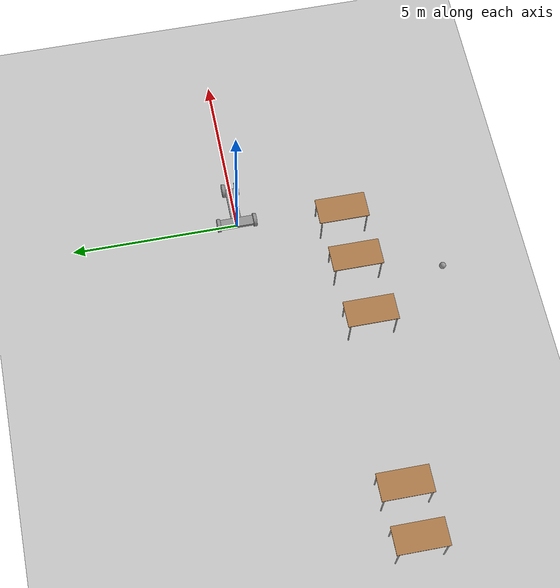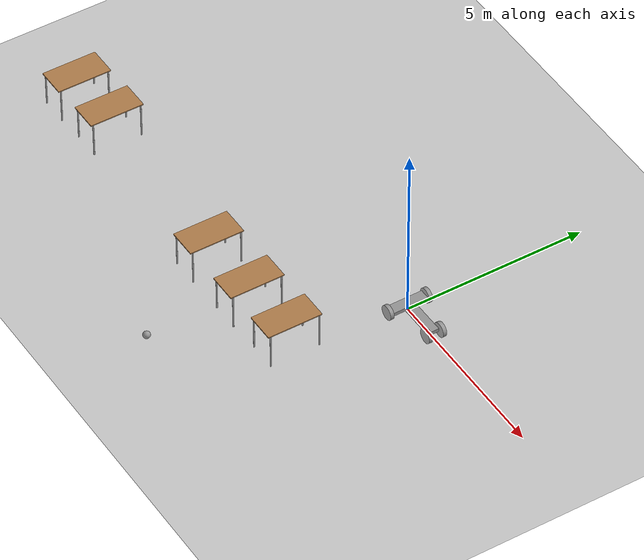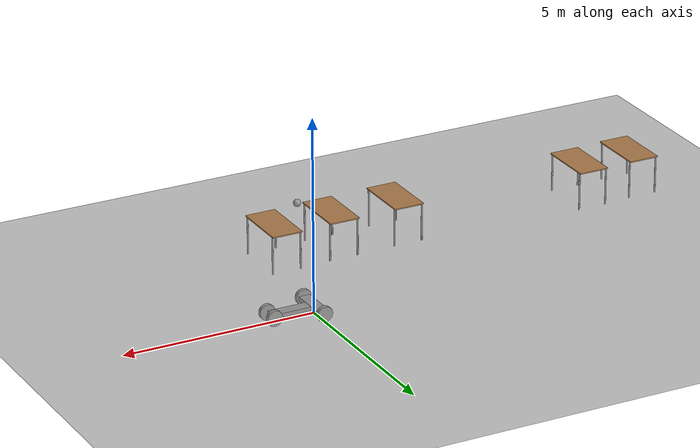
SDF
<sdf version="1.7">
 <world name="default">
  <model name="ground_plane">
   <static>1</static>
   <link name="link">
    <collision name="collision">
     <geometry><plane><normal>0 0 1</normal><size>100 100</size></plane></geometry>
     <surface>
      <contact><collide_bitmask>65535</collide_bitmask></contact>
      <friction><ode><mu>100</mu><mu2>50</mu2></ode></friction>
     </surface>
    </collision>
    <visual name="visual">
     <cast_shadows>0</cast_shadows>
     <geometry><plane><normal>0 0 1</normal><size>100 100</size></plane></geometry>
     <material>
      <script><uri>file://media/materials/scripts/gazebo.material</uri><name>Gazebo/Grey</name></script>
     </material>
    </visual>
   </link>
  </model>
  <model name="robot">
   <link name="link_0">
    <inertial>
     <mass>1</mass>
     <inertia>
      <ixx>0.166667</ixx>
      <ixy>0</ixy>
      <ixz>0</ixz>
      <iyy>0.166667</iyy>
      <iyz>0</iyz>
      <izz>0.166667</izz>
     </inertia>
    </inertial>
    <pose>-0.408333 0 0 0 -0 0</pose>
    <visual name="visual">
     <geometry><box><size>0.3 1 0.1</size></box></geometry>
     <material>
      <lighting>1</lighting>
      <script><uri>file://media/materials/scripts/gazebo.material</uri><name>Gazebo/Grey</name></script>
      <shader type="pixel"><normal_map>__default__</normal_map></shader>
      <ambient>0.3 0.3 0.3 1</ambient>
      <diffuse>0.7 0.7 0.7 1</diffuse>
      <specular>0.01 0.01 0.01 1</specular>
      <emissive>0 0 0 1</emissive>
     </material>
    </visual>
    <collision name="collision">
     <geometry><box><size>0.3 1 0.1</size></box></geometry>
     <surface>
      <friction>
       <ode><mu>1</mu><mu2>1</mu2><fdir1>0 0 0</fdir1><slip1>0</slip1><slip2>0</slip2></ode>
       <torsional>
        <coefficient>1</coefficient>
        <patch_radius>0</patch_radius>
        <surface_radius>0</surface_radius>
        <use_patch_radius>1</use_patch_radius>
        <ode><slip>0</slip></ode>
       </torsional>
      </friction>
      <bounce><restitution_coefficient>0</restitution_coefficient><threshold>1e+06</threshold></bounce>
      <contact>
       <collide_without_contact>0</collide_without_contact>
       <collide_without_contact_bitmask>1</collide_without_contact_bitmask>
       <collide_bitmask>1</collide_bitmask>
       <ode>
        <soft_cfm>0</soft_cfm>
        <soft_erp>0.2</soft_erp>
        <kp>1e+13</kp>
        <kd>1</kd>
        <max_vel>0.01</max_vel>
        <min_depth>0</min_depth>
       </ode>
       <bullet>
        <split_impulse>1</split_impulse>
        <split_impulse_penetration_threshold>-0.01</split_impulse_penetration_threshold>
        <soft_cfm>0</soft_cfm>
        <soft_erp>0.2</soft_erp>
        <kp>1e+13</kp>
        <kd>1</kd>
       </bullet>
      </contact>
     </surface>
    </collision>
   </link>
   <link name="link_1">
    <inertial>
     <mass>1</mass>
     <inertia><ixx>0.145833</ixx><ixy>0</ixy><ixz>0</ixz><iyy>0.145833</iyy><iyz>0</iyz><izz>0.125</izz></inertia>
    </inertial>
    <pose>-0.408333 -0.550019 0 1.5707 -0 0</pose>
    <visual name="visual">
     <geometry><cylinder><radius>0.2</radius><length>0.1</length></cylinder></geometry>
     <material>
      <lighting>1</lighting>
      <script><uri>file://media/materials/scripts/gazebo.material</uri><name>Gazebo/Grey</name></script>
      <shader type="pixel"><normal_map>__default__</normal_map></shader>
      <ambient>0.3 0.3 0.3 1</ambient>
      <diffuse>0.7 0.7 0.7 1</diffuse>
      <specular>0.01 0.01 0.01 1</specular>
      <emissive>0 0 0 1</emissive>
     </material>
    </visual>
    <collision name="collision">
     <geometry><cylinder><radius>0.2</radius><length>0.1</length></cylinder></geometry>
     <surface>
      <friction>
       <ode><mu>1</mu><mu2>1</mu2><fdir1>0 0 0</fdir1><slip1>0</slip1><slip2>0</slip2></ode>
       <torsional>
        <coefficient>1</coefficient>
        <patch_radius>0</patch_radius>
        <surface_radius>0</surface_radius>
        <use_patch_radius>1</use_patch_radius>
        <ode><slip>0</slip></ode>
       </torsional>
      </friction>
      <bounce><restitution_coefficient>0</restitution_coefficient><threshold>1e+06</threshold></bounce>
      <contact>
       <collide_without_contact>0</collide_without_contact>
       <collide_without_contact_bitmask>1</collide_without_contact_bitmask>
       <collide_bitmask>1</collide_bitmask>
       <ode>
        <soft_cfm>0</soft_cfm>
        <soft_erp>0.2</soft_erp>
        <kp>1e+13</kp>
        <kd>1</kd>
        <max_vel>0.01</max_vel>
        <min_depth>0</min_depth>
       </ode>
       <bullet>
        <split_impulse>1</split_impulse>
        <split_impulse_penetration_threshold>-0.01</split_impulse_penetration_threshold>
        <soft_cfm>0</soft_cfm>
        <soft_erp>0.2</soft_erp>
        <kp>1e+13</kp>
        <kd>1</kd>
       </bullet>
      </contact>
     </surface>
    </collision>
   </link>
   <link name="link_1_clone">
    <inertial>
     <mass>1</mass>
     <inertia><ixx>0.145833</ixx><ixy>0</ixy><ixz>0</ixz><iyy>0.145833</iyy><iyz>0</iyz><izz>0.125</izz></inertia>
    </inertial>
    <pose>-0.408333 0.550019 0 1.5707 -0 0</pose>
    <visual name="visual">
     <geometry><cylinder><radius>0.2</radius><length>0.1</length></cylinder></geometry>
     <material>
      <lighting>1</lighting>
      <script><uri>file://media/materials/scripts/gazebo.material</uri><name>Gazebo/Grey</name></script>
      <shader type="pixel"><normal_map>__default__</normal_map></shader>
      <ambient>0.3 0.3 0.3 1</ambient>
      <diffuse>0.7 0.7 0.7 1</diffuse>
      <specular>0.01 0.01 0.01 1</specular>
      <emissive>0 0 0 1</emissive>
     </material>
    </visual>
    <collision name="collision">
     <geometry><cylinder><radius>0.2</radius><length>0.1</length></cylinder></geometry>
     <surface>
      <friction>
       <ode><mu>1</mu><mu2>1</mu2><fdir1>0 0 0</fdir1><slip1>0</slip1><slip2>0</slip2></ode>
       <torsional>
        <coefficient>1</coefficient>
        <patch_radius>0</patch_radius>
        <surface_radius>0</surface_radius>
        <use_patch_radius>1</use_patch_radius>
        <ode><slip>0</slip></ode>
       </torsional>
      </friction>
      <bounce><restitution_coefficient>0</restitution_coefficient><threshold>1e+06</threshold></bounce>
      <contact>
       <collide_without_contact>0</collide_without_contact>
       <collide_without_contact_bitmask>1</collide_without_contact_bitmask>
       <collide_bitmask>1</collide_bitmask>
       <ode>
        <soft_cfm>0</soft_cfm>
        <soft_erp>0.2</soft_erp>
        <kp>1e+13</kp>
        <kd>1</kd>
        <max_vel>0.01</max_vel>
        <min_depth>0</min_depth>
       </ode>
       <bullet>
        <split_impulse>1</split_impulse>
        <split_impulse_penetration_threshold>-0.01</split_impulse_penetration_threshold>
        <soft_cfm>0</soft_cfm>
        <soft_erp>0.2</soft_erp>
        <kp>1e+13</kp>
        <kd>1</kd>
       </bullet>
      </contact>
     </surface>
    </collision>
   </link>
   <link name="link_1_clone_0">
    <inertial>
     <mass>1</mass>
     <inertia><ixx>0.145833</ixx><ixy>0</ixy><ixz>0</ixz><iyy>0.145833</iyy><iyz>0</iyz><izz>0.125</izz></inertia>
    </inertial>
    <pose>0.741667 -0.200019 0 1.5707 -0 0</pose>
    <visual name="visual">
     <geometry><cylinder><radius>0.2</radius><length>0.1</length></cylinder></geometry>
     <material>
      <lighting>1</lighting>
      <script><uri>file://media/materials/scripts/gazebo.material</uri><name>Gazebo/Grey</name></script>
      <shader type="pixel"><normal_map>__default__</normal_map></shader>
      <ambient>0.3 0.3 0.3 1</ambient>
      <diffuse>0.7 0.7 0.7 1</diffuse>
      <specular>0.01 0.01 0.01 1</specular>
      <emissive>0 0 0 1</emissive>
     </material>
    </visual>
    <collision name="collision">
     <geometry><cylinder><radius>0.2</radius><length>0.1</length></cylinder></geometry>
     <surface>
      <friction>
       <ode><mu>1</mu><mu2>1</mu2><fdir1>0 0 0</fdir1><slip1>0</slip1><slip2>0</slip2></ode>
       <torsional>
        <coefficient>1</coefficient>
        <patch_radius>0</patch_radius>
        <surface_radius>0</surface_radius>
        <use_patch_radius>1</use_patch_radius>
        <ode><slip>0</slip></ode>
       </torsional>
      </friction>
      <bounce><restitution_coefficient>0</restitution_coefficient><threshold>1e+06</threshold></bounce>
      <contact>
       <collide_without_contact>0</collide_without_contact>
       <collide_without_contact_bitmask>1</collide_without_contact_bitmask>
       <collide_bitmask>1</collide_bitmask>
       <ode>
        <soft_cfm>0</soft_cfm>
        <soft_erp>0.2</soft_erp>
        <kp>1e+13</kp>
        <kd>1</kd>
        <max_vel>0.01</max_vel>
        <min_depth>0</min_depth>
       </ode>
       <bullet>
        <split_impulse>1</split_impulse>
        <split_impulse_penetration_threshold>-0.01</split_impulse_penetration_threshold>
        <soft_cfm>0</soft_cfm>
        <soft_erp>0.2</soft_erp>
        <kp>1e+13</kp>
        <kd>1</kd>
       </bullet>
      </contact>
     </surface>
    </collision>
   </link>
   <link name="link_1_clone_0_clone">
    <inertial>
     <mass>1</mass>
     <inertia><ixx>0.145833</ixx><ixy>0</ixy><ixz>0</ixz><iyy>0.145833</iyy><iyz>0</iyz><izz>0.125</izz></inertia>
    </inertial>
    <pose>0.741667 0.200019 0 1.5707 -0 0</pose>
    <visual name="visual">
     <geometry><cylinder><radius>0.2</radius><length>0.1</length></cylinder></geometry>
     <material>
      <lighting>1</lighting>
      <script><uri>file://media/materials/scripts/gazebo.material</uri><name>Gazebo/Grey</name></script>
      <shader type="pixel"><normal_map>__default__</normal_map></shader>
      <ambient>0.3 0.3 0.3 1</ambient>
      <diffuse>0.7 0.7 0.7 1</diffuse>
      <specular>0.01 0.01 0.01 1</specular>
      <emissive>0 0 0 1</emissive>
     </material>
    </visual>
    <collision name="collision">
     <geometry><cylinder><radius>0.2</radius><length>0.1</length></cylinder></geometry>
     <surface>
      <friction>
       <ode><mu>1</mu><mu2>1</mu2><fdir1>0 0 0</fdir1><slip1>0</slip1><slip2>0</slip2></ode>
       <torsional>
        <coefficient>1</coefficient>
        <patch_radius>0</patch_radius>
        <surface_radius>0</surface_radius>
        <use_patch_radius>1</use_patch_radius>
        <ode><slip>0</slip></ode>
       </torsional>
      </friction>
      <bounce><restitution_coefficient>0</restitution_coefficient><threshold>1e+06</threshold></bounce>
      <contact>
       <collide_without_contact>0</collide_without_contact>
       <collide_without_contact_bitmask>1</collide_without_contact_bitmask>
       <collide_bitmask>1</collide_bitmask>
       <ode>
        <soft_cfm>0</soft_cfm>
        <soft_erp>0.2</soft_erp>
        <kp>1e+13</kp>
        <kd>1</kd>
        <max_vel>0.01</max_vel>
        <min_depth>0</min_depth>
       </ode>
       <bullet>
        <split_impulse>1</split_impulse>
        <split_impulse_penetration_threshold>-0.01</split_impulse_penetration_threshold>
        <soft_cfm>0</soft_cfm>
        <soft_erp>0.2</soft_erp>
        <kp>1e+13</kp>
        <kd>1</kd>
       </bullet>
      </contact>
     </surface>
    </collision>
   </link>
   <link name="link_3">
    <inertial>
     <mass>1</mass>
     <inertia>
      <ixx>0.166667</ixx>
      <ixy>0</ixy>
      <ixz>0</ixz>
      <iyy>0.166667</iyy>
      <iyz>0</iyz>
      <izz>0.166667</izz>
     </inertia>
    </inertial>
    <pose>0.241667 0 0 0 -0 0</pose>
    <visual name="visual">
     <geometry><box><size>1 0.3 0.1</size></box></geometry>
     <material>
      <lighting>1</lighting>
      <script><uri>file://media/materials/scripts/gazebo.material</uri><name>Gazebo/Grey</name></script>
      <shader type="pixel"><normal_map>__default__</normal_map></shader>
      <ambient>0.3 0.3 0.3 1</ambient>
      <diffuse>0.7 0.7 0.7 1</diffuse>
      <specular>0.01 0.01 0.01 1</specular>
      <emissive>0 0 0 1</emissive>
     </material>
    </visual>
    <collision name="collision">
     <geometry><box><size>1 0.3 0.1</size></box></geometry>
     <surface>
      <friction>
       <ode><mu>1</mu><mu2>1</mu2><fdir1>0 0 0</fdir1><slip1>0</slip1><slip2>0</slip2></ode>
       <torsional>
        <coefficient>1</coefficient>
        <patch_radius>0</patch_radius>
        <surface_radius>0</surface_radius>
        <use_patch_radius>1</use_patch_radius>
        <ode><slip>0</slip></ode>
       </torsional>
      </friction>
      <bounce><restitution_coefficient>0</restitution_coefficient><threshold>1e+06</threshold></bounce>
      <contact>
       <collide_without_contact>0</collide_without_contact>
       <collide_without_contact_bitmask>1</collide_without_contact_bitmask>
       <collide_bitmask>1</collide_bitmask>
       <ode>
        <soft_cfm>0</soft_cfm>
        <soft_erp>0.2</soft_erp>
        <kp>1e+13</kp>
        <kd>1</kd>
        <max_vel>0.01</max_vel>
        <min_depth>0</min_depth>
       </ode>
       <bullet>
        <split_impulse>1</split_impulse>
        <split_impulse_penetration_threshold>-0.01</split_impulse_penetration_threshold>
        <soft_cfm>0</soft_cfm>
        <soft_erp>0.2</soft_erp>
        <kp>1e+13</kp>
        <kd>1</kd>
       </bullet>
      </contact>
     </surface>
    </collision>
   </link>
   <joint name="link_0_JOINT_0" type="revolute">
    <parent>link_0</parent>
    <child>link_1</child>
    <axis>
     <xyz>0 0 1</xyz>
     <limit>
      <lower>-1.79769e+308</lower>
      <upper>1.79769e+308</upper>
      <effort>-1</effort>
      <velocity>-1</velocity>
     </limit>
     <dynamics>
      <spring_reference>0</spring_reference>
      <spring_stiffness>0</spring_stiffness>
      <damping>0</damping>
     </dynamics>
    </axis>
    <physics>
     <ode><limit><cfm>0</cfm><erp>0.2</erp></limit><suspension><cfm>0</cfm><erp>0.2</erp></suspension></ode>
    </physics>
   </joint>
   <joint name="link_0_JOINT_1" type="revolute">
    <parent>link_0</parent>
    <child>link_1_clone</child>
    <axis>
     <xyz>0 0 1</xyz>
     <limit>
      <lower>-1.79769e+308</lower>
      <upper>1.79769e+308</upper>
      <effort>-1</effort>
      <velocity>-1</velocity>
     </limit>
     <dynamics>
      <spring_reference>0</spring_reference>
      <spring_stiffness>0</spring_stiffness>
      <damping>0</damping>
     </dynamics>
    </axis>
    <physics>
     <ode><limit><cfm>0</cfm><erp>0.2</erp></limit><suspension><cfm>0</cfm><erp>0.2</erp></suspension></ode>
    </physics>
   </joint>
   <joint name="link_0_JOINT_3" type="fixed">
    <parent>link_0</parent>
    <child>link_3</child>
    <physics>
     <ode><limit><cfm>0</cfm><erp>0.2</erp></limit><suspension><cfm>0</cfm><erp>0.2</erp></suspension></ode>
    </physics>
   </joint>
   <joint name="link_3_JOINT_5" type="revolute">
    <parent>link_3</parent>
    <child>link_1_clone_0</child>
    <axis>
     <xyz>0 0 1</xyz>
     <limit>
      <lower>-1.79769e+308</lower>
      <upper>1.79769e+308</upper>
      <effort>-1</effort>
      <velocity>-1</velocity>
     </limit>
     <dynamics>
      <spring_reference>0</spring_reference>
      <spring_stiffness>0</spring_stiffness>
      <damping>0</damping>
     </dynamics>
    </axis>
    <physics>
     <ode><limit><cfm>0</cfm><erp>0.2</erp></limit><suspension><cfm>0</cfm><erp>0.2</erp></suspension></ode>
    </physics>
   </joint>
   <joint name="link_3_JOINT_6" type="revolute">
    <parent>link_3</parent>
    <child>link_1_clone_0_clone</child>
    <axis>
     <xyz>0 0 1</xyz>
     <limit>
      <lower>-1.79769e+308</lower>
      <upper>1.79769e+308</upper>
      <effort>-1</effort>
      <velocity>-1</velocity>
     </limit>
     <dynamics>
      <spring_reference>0</spring_reference>
      <spring_stiffness>0</spring_stiffness>
      <damping>0</damping>
     </dynamics>
    </axis>
    <physics>
     <ode><limit><cfm>0</cfm><erp>0.2</erp></limit><suspension><cfm>0</cfm><erp>0.2</erp></suspension></ode>
    </physics>
   </joint>
   <static>0</static>
   <pose>0.409146 0.001566 0.200003 5e-06 -1e-06 0.004136</pose>
  </model>
  <model name="table_clone_clone">
   <static>1</static>
   <link name="link">
    <collision name="surface">
     <pose>0 0 1 0 -0 0</pose>
     <geometry><box><size>1.5 0.8 0.03</size></box></geometry>
     <surface><friction><ode><mu>0.6</mu><mu2>0.6</mu2></ode></friction></surface>
    </collision>
    <visual name="visual1">
     <pose>0 0 1 0 -0 0</pose>
     <geometry><box><size>1.5 0.8 0.03</size></box></geometry>
     <material>
      <script><uri>file://media/materials/scripts/gazebo.material</uri><name>Gazebo/Wood</name></script>
     </material>
    </visual>
    <collision name="front_left_leg">
     <pose>0.68 0.38 0.5 0 -0 0</pose>
     <geometry><cylinder><radius>0.02</radius><length>1</length></cylinder></geometry>
    </collision>
    <visual name="front_left_leg">
     <pose>0.68 0.38 0.5 0 -0 0</pose>
     <geometry><cylinder><radius>0.02</radius><length>1</length></cylinder></geometry>
     <material>
      <script><uri>file://media/materials/scripts/gazebo.material</uri><name>Gazebo/Grey</name></script>
     </material>
    </visual>
    <collision name="front_right_leg">
     <pose>0.68 -0.38 0.5 0 -0 0</pose>
     <geometry><cylinder><radius>0.02</radius><length>1</length></cylinder></geometry>
    </collision>
    <visual name="front_right_leg">
     <pose>0.68 -0.38 0.5 0 -0 0</pose>
     <geometry><cylinder><radius>0.02</radius><length>1</length></cylinder></geometry>
     <material>
      <script><uri>file://media/materials/scripts/gazebo.material</uri><name>Gazebo/Grey</name></script>
     </material>
    </visual>
    <collision name="back_right_leg">
     <pose>-0.68 -0.38 0.5 0 -0 0</pose>
     <geometry><cylinder><radius>0.02</radius><length>1</length></cylinder></geometry>
    </collision>
    <visual name="back_right_leg">
     <pose>-0.68 -0.38 0.5 0 -0 0</pose>
     <geometry><cylinder><radius>0.02</radius><length>1</length></cylinder></geometry>
     <material>
      <script><uri>file://media/materials/scripts/gazebo.material</uri><name>Gazebo/Grey</name></script>
     </material>
    </visual>
    <collision name="back_left_leg">
     <pose>-0.68 0.38 0.5 0 -0 0</pose>
     <geometry><cylinder><radius>0.02</radius><length>1</length></cylinder></geometry>
    </collision>
    <visual name="back_left_leg">
     <pose>-0.68 0.38 0.5 0 -0 0</pose>
     <geometry><cylinder><radius>0.02</radius><length>1</length></cylinder></geometry>
     <material>
      <script><uri>file://media/materials/scripts/gazebo.material</uri><name>Gazebo/Grey</name></script>
     </material>
    </visual>
   </link>
   <pose>-3.90443 -3.19451 0 0 -0 1.5707</pose>
  </model>
  <model name="table_clone_clone_clone">
   <static>1</static>
   <link name="link">
    <collision name="surface">
     <pose>0 0 1 0 -0 0</pose>
     <geometry><box><size>1.5 0.8 0.03</size></box></geometry>
     <surface><friction><ode><mu>0.6</mu><mu2>0.6</mu2></ode></friction></surface>
    </collision>
    <visual name="visual1">
     <pose>0 0 1 0 -0 0</pose>
     <geometry><box><size>1.5 0.8 0.03</size></box></geometry>
     <material>
      <script><uri>file://media/materials/scripts/gazebo.material</uri><name>Gazebo/Wood</name></script>
     </material>
    </visual>
    <collision name="front_left_leg">
     <pose>0.68 0.38 0.5 0 -0 0</pose>
     <geometry><cylinder><radius>0.02</radius><length>1</length></cylinder></geometry>
    </collision>
    <visual name="front_left_leg">
     <pose>0.68 0.38 0.5 0 -0 0</pose>
     <geometry><cylinder><radius>0.02</radius><length>1</length></cylinder></geometry>
     <material>
      <script><uri>file://media/materials/scripts/gazebo.material</uri><name>Gazebo/Grey</name></script>
     </material>
    </visual>
    <collision name="front_right_leg">
     <pose>0.68 -0.38 0.5 0 -0 0</pose>
     <geometry><cylinder><radius>0.02</radius><length>1</length></cylinder></geometry>
    </collision>
    <visual name="front_right_leg">
     <pose>0.68 -0.38 0.5 0 -0 0</pose>
     <geometry><cylinder><radius>0.02</radius><length>1</length></cylinder></geometry>
     <material>
      <script><uri>file://media/materials/scripts/gazebo.material</uri><name>Gazebo/Grey</name></script>
     </material>
    </visual>
    <collision name="back_right_leg">
     <pose>-0.68 -0.38 0.5 0 -0 0</pose>
     <geometry><cylinder><radius>0.02</radius><length>1</length></cylinder></geometry>
    </collision>
    <visual name="back_right_leg">
     <pose>-0.68 -0.38 0.5 0 -0 0</pose>
     <geometry><cylinder><radius>0.02</radius><length>1</length></cylinder></geometry>
     <material>
      <script><uri>file://media/materials/scripts/gazebo.material</uri><name>Gazebo/Grey</name></script>
     </material>
    </visual>
    <collision name="back_left_leg">
     <pose>-0.68 0.38 0.5 0 -0 0</pose>
     <geometry><cylinder><radius>0.02</radius><length>1</length></cylinder></geometry>
    </collision>
    <visual name="back_left_leg">
     <pose>-0.68 0.38 0.5 0 -0 0</pose>
     <geometry><cylinder><radius>0.02</radius><length>1</length></cylinder></geometry>
     <material>
      <script><uri>file://media/materials/scripts/gazebo.material</uri><name>Gazebo/Grey</name></script>
     </material>
    </visual>
   </link>
   <pose>-2.09803 -3.15986 0 0 -0 1.5707</pose>
  </model>
  <model name="table_clone_clone_clone_clone">
   <static>1</static>
   <link name="link">
    <collision name="surface">
     <pose>0 0 1 0 -0 0</pose>
     <geometry><box><size>1.5 0.8 0.03</size></box></geometry>
     <surface><friction><ode><mu>0.6</mu><mu2>0.6</mu2></ode></friction></surface>
    </collision>
    <visual name="visual1">
     <pose>0 0 1 0 -0 0</pose>
     <geometry><box><size>1.5 0.8 0.03</size></box></geometry>
     <material>
      <script><uri>file://media/materials/scripts/gazebo.material</uri><name>Gazebo/Wood</name></script>
     </material>
    </visual>
    <collision name="front_left_leg">
     <pose>0.68 0.38 0.5 0 -0 0</pose>
     <geometry><cylinder><radius>0.02</radius><length>1</length></cylinder></geometry>
    </collision>
    <visual name="front_left_leg">
     <pose>0.68 0.38 0.5 0 -0 0</pose>
     <geometry><cylinder><radius>0.02</radius><length>1</length></cylinder></geometry>
     <material>
      <script><uri>file://media/materials/scripts/gazebo.material</uri><name>Gazebo/Grey</name></script>
     </material>
    </visual>
    <collision name="front_right_leg">
     <pose>0.68 -0.38 0.5 0 -0 0</pose>
     <geometry><cylinder><radius>0.02</radius><length>1</length></cylinder></geometry>
    </collision>
    <visual name="front_right_leg">
     <pose>0.68 -0.38 0.5 0 -0 0</pose>
     <geometry><cylinder><radius>0.02</radius><length>1</length></cylinder></geometry>
     <material>
      <script><uri>file://media/materials/scripts/gazebo.material</uri><name>Gazebo/Grey</name></script>
     </material>
    </visual>
    <collision name="back_right_leg">
     <pose>-0.68 -0.38 0.5 0 -0 0</pose>
     <geometry><cylinder><radius>0.02</radius><length>1</length></cylinder></geometry>
    </collision>
    <visual name="back_right_leg">
     <pose>-0.68 -0.38 0.5 0 -0 0</pose>
     <geometry><cylinder><radius>0.02</radius><length>1</length></cylinder></geometry>
     <material>
      <script><uri>file://media/materials/scripts/gazebo.material</uri><name>Gazebo/Grey</name></script>
     </material>
    </visual>
    <collision name="back_left_leg">
     <pose>-0.68 0.38 0.5 0 -0 0</pose>
     <geometry><cylinder><radius>0.02</radius><length>1</length></cylinder></geometry>
    </collision>
    <visual name="back_left_leg">
     <pose>-0.68 0.38 0.5 0 -0 0</pose>
     <geometry><cylinder><radius>0.02</radius><length>1</length></cylinder></geometry>
     <material>
      <script><uri>file://media/materials/scripts/gazebo.material</uri><name>Gazebo/Grey</name></script>
     </material>
    </visual>
   </link>
   <pose>-0.497314 -3.09299 0 0 -0 1.5707</pose>
  </model>
  <model name="table_clone_clone_clone_0">
   <static>1</static>
   <link name="link">
    <collision name="surface">
     <pose>0 0 1 0 -0 0</pose>
     <geometry><box><size>1.5 0.8 0.03</size></box></geometry>
     <surface><friction><ode><mu>0.6</mu><mu2>0.6</mu2></ode></friction></surface>
    </collision>
    <visual name="visual1">
     <pose>0 0 1 0 -0 0</pose>
     <geometry><box><size>1.5 0.8 0.03</size></box></geometry>
     <material>
      <script><uri>file://media/materials/scripts/gazebo.material</uri><name>Gazebo/Wood</name></script>
     </material>
    </visual>
    <collision name="front_left_leg">
     <pose>0.68 0.38 0.5 0 -0 0</pose>
     <geometry><cylinder><radius>0.02</radius><length>1</length></cylinder></geometry>
    </collision>
    <visual name="front_left_leg">
     <pose>0.68 0.38 0.5 0 -0 0</pose>
     <geometry><cylinder><radius>0.02</radius><length>1</length></cylinder></geometry>
     <material>
      <script><uri>file://media/materials/scripts/gazebo.material</uri><name>Gazebo/Grey</name></script>
     </material>
    </visual>
    <collision name="front_right_leg">
     <pose>0.68 -0.38 0.5 0 -0 0</pose>
     <geometry><cylinder><radius>0.02</radius><length>1</length></cylinder></geometry>
    </collision>
    <visual name="front_right_leg">
     <pose>0.68 -0.38 0.5 0 -0 0</pose>
     <geometry><cylinder><radius>0.02</radius><length>1</length></cylinder></geometry>
     <material>
      <script><uri>file://media/materials/scripts/gazebo.material</uri><name>Gazebo/Grey</name></script>
     </material>
    </visual>
    <collision name="back_right_leg">
     <pose>-0.68 -0.38 0.5 0 -0 0</pose>
     <geometry><cylinder><radius>0.02</radius><length>1</length></cylinder></geometry>
    </collision>
    <visual name="back_right_leg">
     <pose>-0.68 -0.38 0.5 0 -0 0</pose>
     <geometry><cylinder><radius>0.02</radius><length>1</length></cylinder></geometry>
     <material>
      <script><uri>file://media/materials/scripts/gazebo.material</uri><name>Gazebo/Grey</name></script>
     </material>
    </visual>
    <collision name="back_left_leg">
     <pose>-0.68 0.38 0.5 0 -0 0</pose>
     <geometry><cylinder><radius>0.02</radius><length>1</length></cylinder></geometry>
    </collision>
    <visual name="back_left_leg">
     <pose>-0.68 0.38 0.5 0 -0 0</pose>
     <geometry><cylinder><radius>0.02</radius><length>1</length></cylinder></geometry>
     <material>
      <script><uri>file://media/materials/scripts/gazebo.material</uri><name>Gazebo/Grey</name></script>
     </material>
    </visual>
   </link>
   <pose>-10.5445 -3.02065 0 0 -0 1.5707</pose>
  </model>
  <model name="table_clone_clone_clone_1">
   <static>1</static>
   <link name="link">
    <collision name="surface">
     <pose>0 0 1 0 -0 0</pose>
     <geometry><box><size>1.5 0.8 0.03</size></box></geometry>
     <surface><friction><ode><mu>0.6</mu><mu2>0.6</mu2></ode></friction></surface>
    </collision>
    <visual name="visual1">
     <pose>0 0 1 0 -0 0</pose>
     <geometry><box><size>1.5 0.8 0.03</size></box></geometry>
     <material>
      <script><uri>file://media/materials/scripts/gazebo.material</uri><name>Gazebo/Wood</name></script>
     </material>
    </visual>
    <collision name="front_left_leg">
     <pose>0.68 0.38 0.5 0 -0 0</pose>
     <geometry><cylinder><radius>0.02</radius><length>1</length></cylinder></geometry>
    </collision>
    <visual name="front_left_leg">
     <pose>0.68 0.38 0.5 0 -0 0</pose>
     <geometry><cylinder><radius>0.02</radius><length>1</length></cylinder></geometry>
     <material>
      <script><uri>file://media/materials/scripts/gazebo.material</uri><name>Gazebo/Grey</name></script>
     </material>
    </visual>
    <collision name="front_right_leg">
     <pose>0.68 -0.38 0.5 0 -0 0</pose>
     <geometry><cylinder><radius>0.02</radius><length>1</length></cylinder></geometry>
    </collision>
    <visual name="front_right_leg">
     <pose>0.68 -0.38 0.5 0 -0 0</pose>
     <geometry><cylinder><radius>0.02</radius><length>1</length></cylinder></geometry>
     <material>
      <script><uri>file://media/materials/scripts/gazebo.material</uri><name>Gazebo/Grey</name></script>
     </material>
    </visual>
    <collision name="back_right_leg">
     <pose>-0.68 -0.38 0.5 0 -0 0</pose>
     <geometry><cylinder><radius>0.02</radius><length>1</length></cylinder></geometry>
    </collision>
    <visual name="back_right_leg">
     <pose>-0.68 -0.38 0.5 0 -0 0</pose>
     <geometry><cylinder><radius>0.02</radius><length>1</length></cylinder></geometry>
     <material>
      <script><uri>file://media/materials/scripts/gazebo.material</uri><name>Gazebo/Grey</name></script>
     </material>
    </visual>
    <collision name="back_left_leg">
     <pose>-0.68 0.38 0.5 0 -0 0</pose>
     <geometry><cylinder><radius>0.02</radius><length>1</length></cylinder></geometry>
    </collision>
    <visual name="back_left_leg">
     <pose>-0.68 0.38 0.5 0 -0 0</pose>
     <geometry><cylinder><radius>0.02</radius><length>1</length></cylinder></geometry>
     <material>
      <script><uri>file://media/materials/scripts/gazebo.material</uri><name>Gazebo/Grey</name></script>
     </material>
    </visual>
   </link>
   <pose>-9.04841 -2.96374 0 0 -0 1.5707</pose>
  </model>
  <model name="my_ball">
   <link name="link_0">
    <inertial>
     <mass>1</mass>
     <inertia><ixx>0.1</ixx><ixy>0</ixy><ixz>0</ixz><iyy>0.1</iyy><iyz>0</iyz><izz>0.1</izz></inertia>
    </inertial>
    <visual name="visual">
     <geometry><sphere><radius>0.1</radius></sphere></geometry>
     <material>
      <lighting>1</lighting>
      <script><uri>file://media/materials/scripts/gazebo.material</uri><name>Gazebo/Grey</name></script>
      <shader type="pixel"><normal_map>__default__</normal_map></shader>
      <ambient>1 1 1 1</ambient>
      <diffuse>1 1 1 1</diffuse>
      <specular>1 1 1 1</specular>
      <emissive>1 1 1 1</emissive>
     </material>
    </visual>
    <collision name="collision">
     <geometry><sphere><radius>0.1</radius></sphere></geometry>
     <surface>
      <friction>
       <ode><mu>1</mu><mu2>1</mu2><fdir1>0 0 0</fdir1><slip1>0</slip1><slip2>0</slip2></ode>
       <torsional>
        <coefficient>1</coefficient>
        <patch_radius>0</patch_radius>
        <surface_radius>0</surface_radius>
        <use_patch_radius>1</use_patch_radius>
        <ode><slip>0</slip></ode>
       </torsional>
      </friction>
      <bounce><restitution_coefficient>0</restitution_coefficient><threshold>1e+06</threshold></bounce>
      <contact>
       <collide_without_contact>0</collide_without_contact>
       <collide_without_contact_bitmask>1</collide_without_contact_bitmask>
       <collide_bitmask>1</collide_bitmask>
       <ode>
        <soft_cfm>0</soft_cfm>
        <soft_erp>0.2</soft_erp>
        <kp>1e+13</kp>
        <kd>1</kd>
        <max_vel>0.01</max_vel>
        <min_depth>0</min_depth>
       </ode>
       <bullet>
        <split_impulse>1</split_impulse>
        <split_impulse_penetration_threshold>-0.01</split_impulse_penetration_threshold>
        <soft_cfm>0</soft_cfm>
        <soft_erp>0.2</soft_erp>
        <kp>1e+13</kp>
        <kd>1</kd>
       </bullet>
      </contact>
     </surface>
    </collision>
   </link>
   <static>0</static>
   <pose>-2.4964 -5.79058 0.1 0 -0 0</pose>
  </model>
 </world>
</sdf>
